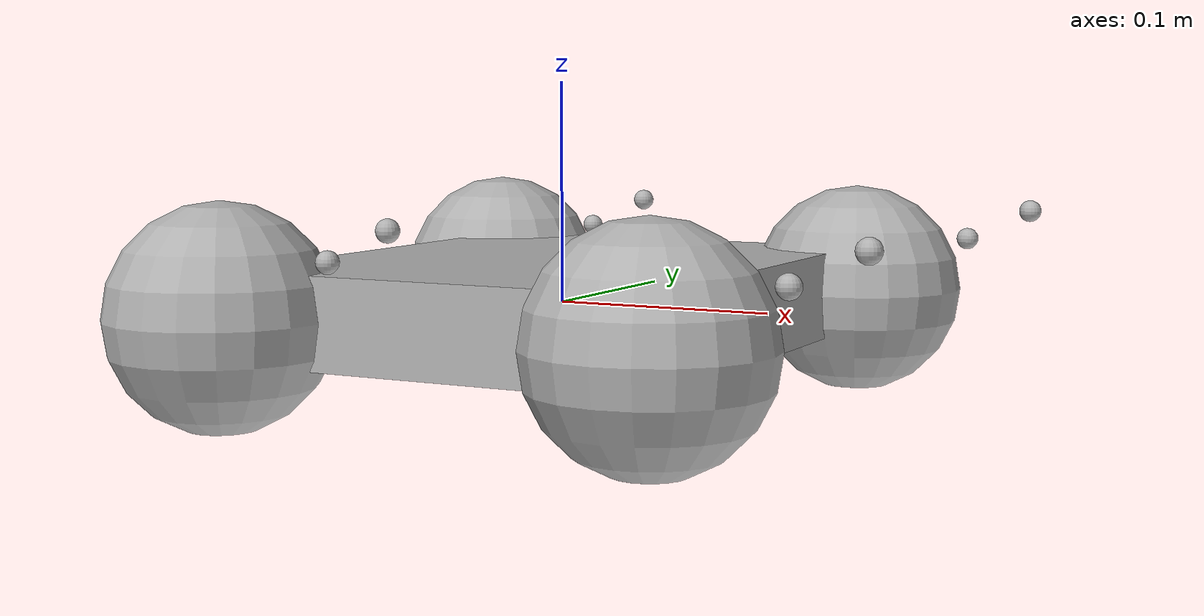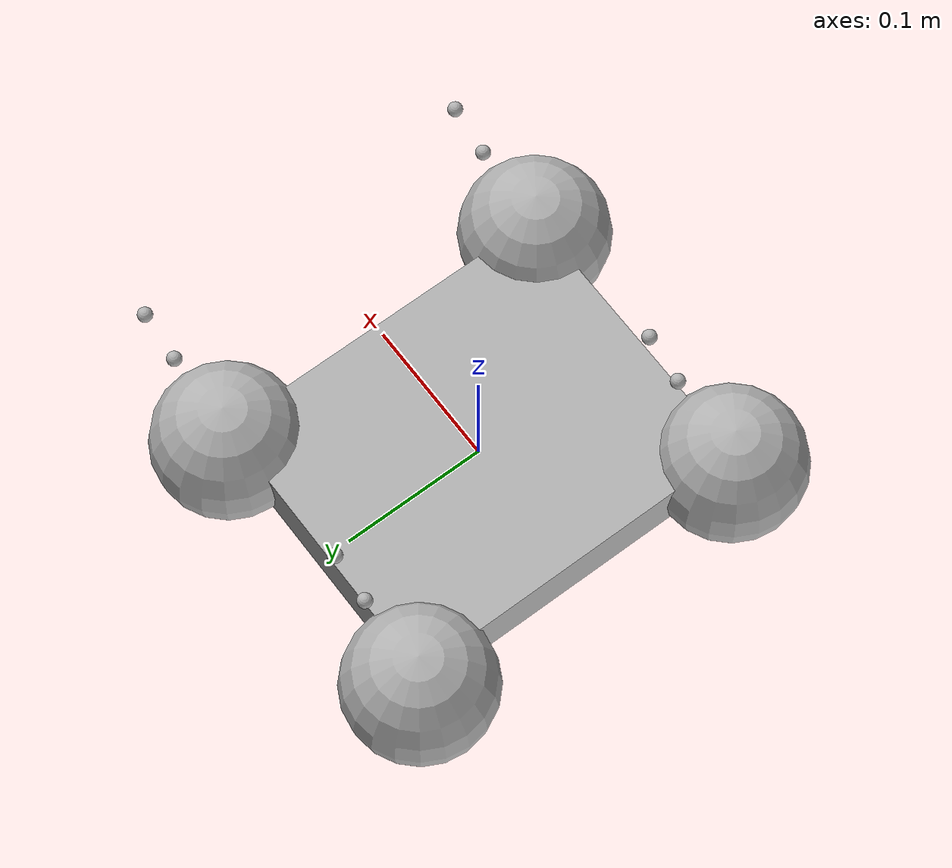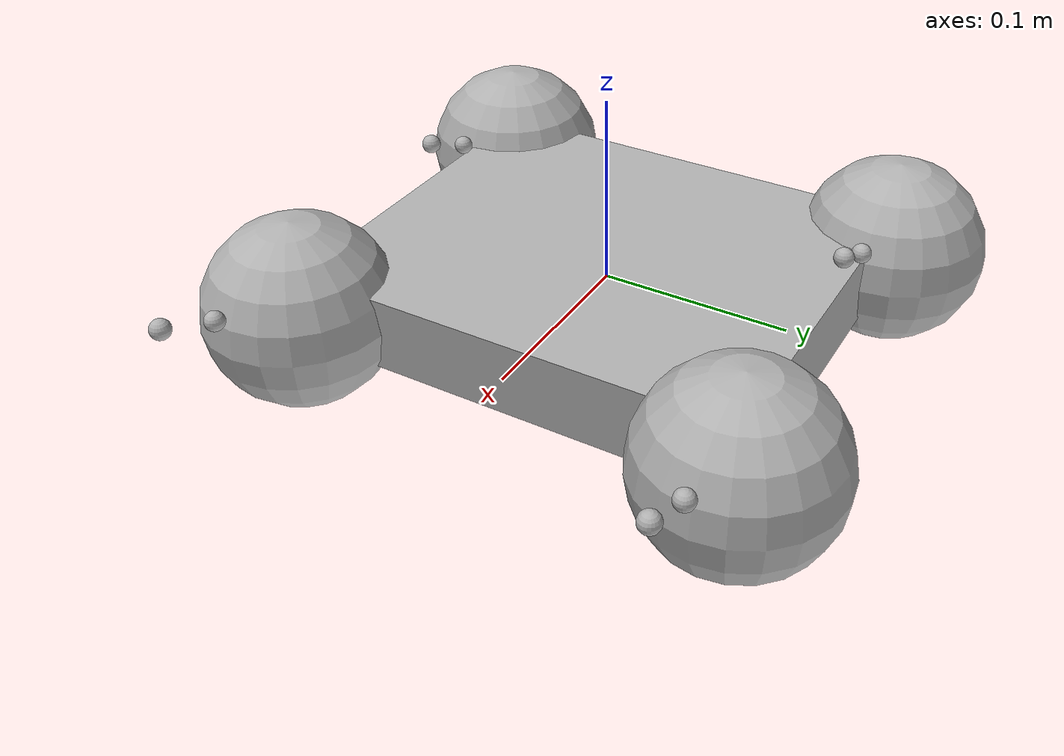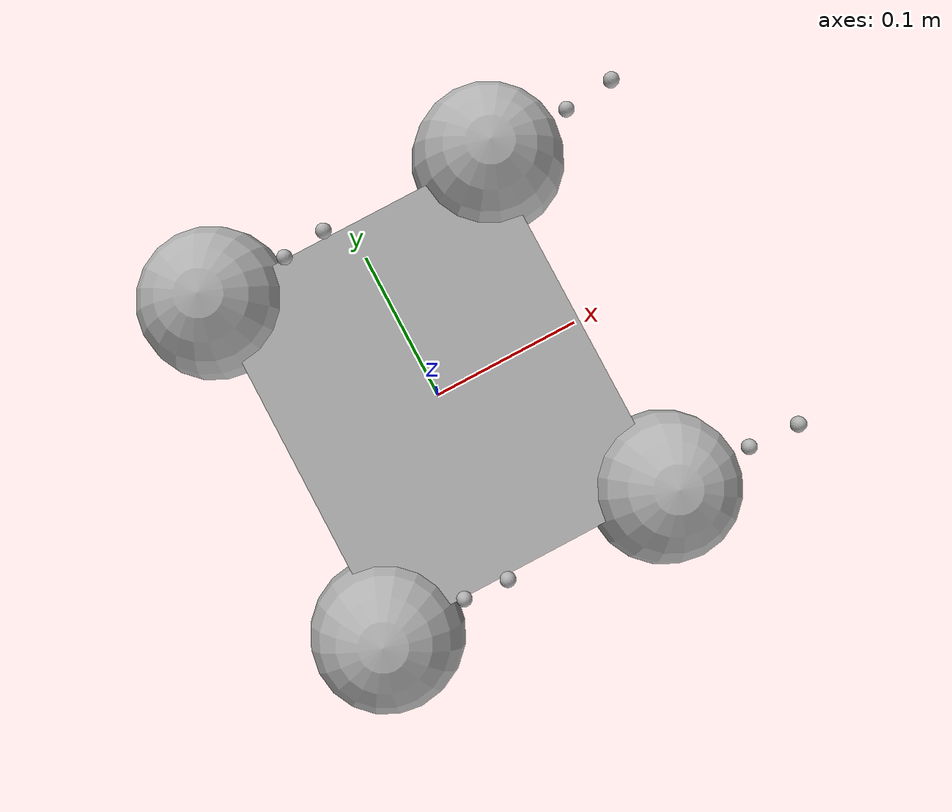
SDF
<?xml version='1.0'?>

<sdf version='1.6'>
  <model name='ugv-rb'>

    <link name='chassis'>

      <pose frame=''>0 0 0 0 -0 0</pose>

      <inertial>
        <mass>0.71616</mass>
        <inertia>
          <ixx>0.003533056</ixx>
          <ixy>0</ixy>
          <ixz>0</ixz>
          <iyy>0.0024826880000000003</iyy>
          <iyz>0</iyz>
          <izz>0.005824768000000001</izz>
        </inertia>
      </inertial>

      <visual name='visual'>
        <geometry>
          <box>
            <size>0.2 0.24 0.04</size>
          </box>
        </geometry>
        <material>
          <ambient>0.3 0.3 0.3 1</ambient>
          <diffuse>0.7 0.7 0.7 1</diffuse>
          <specular>0.01 0.01 0.01 1</specular>
          <emissive>0 0 0 1</emissive>
        </material>
        <transparency>0</transparency>
      </visual>

      <collision name='collision'>
        <geometry>
          <box>
            <size>0.2 0.24 0.04</size>
          </box>
        </geometry>
      </collision>

    </link>

    <link name='front-right-wheel'>

      <pose frame=''>0.1 -0.12 0 0 -0 0</pose>

      <inertial>
        <mass>0.1953023432981655</mass>
        <inertia>
          <ixx>0.00019530234329816556</ixx>
          <ixy>0</ixy>
          <ixz>0</ixz>
          <iyy>0.00019530234329816556</iyy>
          <iyz>0</iyz>
          <izz>0.00019530234329816556</izz>
        </inertia>
      </inertial>

      <visual name='visual'>
        <geometry>
          <sphere>
            <radius>0.05</radius>
          </sphere>
        </geometry>
        <material>
          <ambient>0.3 0.3 0.6 1</ambient>
          <diffuse>0.7 0.7 0.7 1</diffuse>
          <specular>0.01 0.01 0.01 1</specular>
          <emissive>0 0 0 1</emissive>
        </material>
        <transparency>0</transparency>
      </visual>

      <collision name='collision'>
        <geometry>
          <sphere>
            <radius>0.05</radius>
          </sphere>
        </geometry>
      </collision>

    </link>

    <link name='front-right-wheel-leg1'>

      <pose frame=''>0.18437546221665874 -0.12 0.03996732420789099 0 -0 0</pose>

      <inertial>
        <mass>0.00019530234329816546</mass>
        <inertia>
          <ixx>1.953023432981655e-09</ixx>
          <ixy>0</ixy>
          <ixz>0</ixz>
          <iyy>1.953023432981655e-09</iyy>
          <iyz>0</iyz>
          <izz>1.953023432981655e-09</izz>
        </inertia>
      </inertial>

      <visual name='visual'>
        <geometry>
          <sphere>
            <radius>0.005</radius>
          </sphere>
        </geometry>
        <material>
          <ambient>0.3 0.3 0.6 1</ambient>
          <diffuse>0.7 0.7 0.7 1</diffuse>
          <specular>0.01 0.01 0.01 1</specular>
          <emissive>0 0 0 1</emissive>
        </material>
        <transparency>0</transparency>
      </visual>

      <collision name='collision'>
        <geometry>
          <sphere>
            <radius>0.005</radius>
          </sphere>
        </geometry>
      </collision>

    </link>

    <link name='front-right-wheel-leg2'>

      <pose frame=''>0.15487828682683807 -0.12 0.025994977970607507 0 -0 0</pose>

      <inertial>
        <mass>0.00019530234329816546</mass>
        <inertia>
          <ixx>1.953023432981655e-09</ixx>
          <ixy>0</ixy>
          <ixz>0</ixz>
          <iyy>1.953023432981655e-09</iyy>
          <iyz>0</iyz>
          <izz>1.953023432981655e-09</izz>
        </inertia>
      </inertial>

      <visual name='visual'>
        <geometry>
          <sphere>
            <radius>0.005</radius>
          </sphere>
        </geometry>
        <material>
          <ambient>0.3 0.3 0.6 1</ambient>
          <diffuse>0.7 0.7 0.7 1</diffuse>
          <specular>0.01 0.01 0.01 1</specular>
          <emissive>0 0 0 1</emissive>
        </material>
        <transparency>0</transparency>
      </visual>

      <collision name='collision'>
        <geometry>
          <sphere>
            <radius>0.005</radius>
          </sphere>
        </geometry>
      </collision>

    </link>

    <link name='front-right-wheel-leg3'>

      <pose frame=''>0.11310623918697993 -0.12 0.006208218562253646 0 -0 0</pose>

      <inertial>
        <mass>0.00019530234329816546</mass>
        <inertia>
          <ixx>1.953023432981655e-09</ixx>
          <ixy>0</ixy>
          <ixz>0</ixz>
          <iyy>1.953023432981655e-09</iyy>
          <iyz>0</iyz>
          <izz>1.953023432981655e-09</izz>
        </inertia>
      </inertial>

      <visual name='visual'>
        <geometry>
          <sphere>
            <radius>0.005</radius>
          </sphere>
        </geometry>
        <material>
          <ambient>0.3 0.3 0.6 1</ambient>
          <diffuse>0.7 0.7 0.7 1</diffuse>
          <specular>0.01 0.01 0.01 1</specular>
          <emissive>0 0 0 1</emissive>
        </material>
        <transparency>0</transparency>
      </visual>

      <collision name='collision'>
        <geometry>
          <sphere>
            <radius>0.005</radius>
          </sphere>
        </geometry>
      </collision>

    </link>

    <link name='front-left-wheel'>

      <pose frame=''>0.1 0.12 0 0 -0 0</pose>

      <inertial>
        <mass>0.1953023432981655</mass>
        <inertia>
          <ixx>0.00019530234329816556</ixx>
          <ixy>0</ixy>
          <ixz>0</ixz>
          <iyy>0.00019530234329816556</iyy>
          <iyz>0</iyz>
          <izz>0.00019530234329816556</izz>
        </inertia>
      </inertial>

      <visual name='visual'>
        <geometry>
          <sphere>
            <radius>0.05</radius>
          </sphere>
        </geometry>
        <material>
          <ambient>0.3 0.3 0.6 1</ambient>
          <diffuse>0.7 0.7 0.7 1</diffuse>
          <specular>0.01 0.01 0.01 1</specular>
          <emissive>0 0 0 1</emissive>
        </material>
        <transparency>0</transparency>
      </visual>

      <collision name='collision'>
        <geometry>
          <sphere>
            <radius>0.05</radius>
          </sphere>
        </geometry>
      </collision>

    </link>

    <link name='front-left-wheel-leg1'>

      <pose frame=''>0.18437546221665874 0.12 0.03996732420789099 0 -0 0</pose>

      <inertial>
        <mass>0.00019530234329816546</mass>
        <inertia>
          <ixx>1.953023432981655e-09</ixx>
          <ixy>0</ixy>
          <ixz>0</ixz>
          <iyy>1.953023432981655e-09</iyy>
          <iyz>0</iyz>
          <izz>1.953023432981655e-09</izz>
        </inertia>
      </inertial>

      <visual name='visual'>
        <geometry>
          <sphere>
            <radius>0.005</radius>
          </sphere>
        </geometry>
        <material>
          <ambient>0.3 0.3 0.6 1</ambient>
          <diffuse>0.7 0.7 0.7 1</diffuse>
          <specular>0.01 0.01 0.01 1</specular>
          <emissive>0 0 0 1</emissive>
        </material>
        <transparency>0</transparency>
      </visual>

      <collision name='collision'>
        <geometry>
          <sphere>
            <radius>0.005</radius>
          </sphere>
        </geometry>
      </collision>

    </link>

    <link name='front-left-wheel-leg2'>

      <pose frame=''>0.15487828682683807 0.12 0.025994977970607507 0 -0 0</pose>

      <inertial>
        <mass>0.00019530234329816546</mass>
        <inertia>
          <ixx>1.953023432981655e-09</ixx>
          <ixy>0</ixy>
          <ixz>0</ixz>
          <iyy>1.953023432981655e-09</iyy>
          <iyz>0</iyz>
          <izz>1.953023432981655e-09</izz>
        </inertia>
      </inertial>

      <visual name='visual'>
        <geometry>
          <sphere>
            <radius>0.005</radius>
          </sphere>
        </geometry>
        <material>
          <ambient>0.3 0.3 0.6 1</ambient>
          <diffuse>0.7 0.7 0.7 1</diffuse>
          <specular>0.01 0.01 0.01 1</specular>
          <emissive>0 0 0 1</emissive>
        </material>
        <transparency>0</transparency>
      </visual>

      <collision name='collision'>
        <geometry>
          <sphere>
            <radius>0.005</radius>
          </sphere>
        </geometry>
      </collision>

    </link>

    <link name='front-left-wheel-leg3'>

      <pose frame=''>0.11310623918697993 0.12 0.006208218562253646 0 -0 0</pose>

      <inertial>
        <mass>0.00019530234329816546</mass>
        <inertia>
          <ixx>1.953023432981655e-09</ixx>
          <ixy>0</ixy>
          <ixz>0</ixz>
          <iyy>1.953023432981655e-09</iyy>
          <iyz>0</iyz>
          <izz>1.953023432981655e-09</izz>
        </inertia>
      </inertial>

      <visual name='visual'>
        <geometry>
          <sphere>
            <radius>0.005</radius>
          </sphere>
        </geometry>
        <material>
          <ambient>0.3 0.3 0.6 1</ambient>
          <diffuse>0.7 0.7 0.7 1</diffuse>
          <specular>0.01 0.01 0.01 1</specular>
          <emissive>0 0 0 1</emissive>
        </material>
        <transparency>0</transparency>
      </visual>

      <collision name='collision'>
        <geometry>
          <sphere>
            <radius>0.005</radius>
          </sphere>
        </geometry>
      </collision>

    </link>

    <link name='back-right-wheel'>

      <pose frame=''>-0.1 -0.12 0 0 -0 0</pose>

      <inertial>
        <mass>0.1953023432981655</mass>
        <inertia>
          <ixx>0.00019530234329816556</ixx>
          <ixy>0</ixy>
          <ixz>0</ixz>
          <iyy>0.00019530234329816556</iyy>
          <iyz>0</iyz>
          <izz>0.00019530234329816556</izz>
        </inertia>
      </inertial>

      <visual name='visual'>
        <geometry>
          <sphere>
            <radius>0.05</radius>
          </sphere>
        </geometry>
        <material>
          <ambient>0.3 0.3 0.6 1</ambient>
          <diffuse>0.7 0.7 0.7 1</diffuse>
          <specular>0.01 0.01 0.01 1</specular>
          <emissive>0 0 0 1</emissive>
        </material>
        <transparency>0</transparency>
      </visual>

      <collision name='collision'>
        <geometry>
          <sphere>
            <radius>0.05</radius>
          </sphere>
        </geometry>
      </collision>

    </link>

    <link name='back-right-wheel-leg1'>

      <pose frame=''>-0.01562453778334126 -0.12 0.03996732420789099 0 -0 0</pose>

      <inertial>
        <mass>0.00019530234329816546</mass>
        <inertia>
          <ixx>1.953023432981655e-09</ixx>
          <ixy>0</ixy>
          <ixz>0</ixz>
          <iyy>1.953023432981655e-09</iyy>
          <iyz>0</iyz>
          <izz>1.953023432981655e-09</izz>
        </inertia>
      </inertial>

      <visual name='visual'>
        <geometry>
          <sphere>
            <radius>0.005</radius>
          </sphere>
        </geometry>
        <material>
          <ambient>0.3 0.3 0.6 1</ambient>
          <diffuse>0.7 0.7 0.7 1</diffuse>
          <specular>0.01 0.01 0.01 1</specular>
          <emissive>0 0 0 1</emissive>
        </material>
        <transparency>0</transparency>
      </visual>

      <collision name='collision'>
        <geometry>
          <sphere>
            <radius>0.005</radius>
          </sphere>
        </geometry>
      </collision>

    </link>

    <link name='back-right-wheel-leg2'>

      <pose frame=''>-0.04512171317316194 -0.12 0.025994977970607507 0 -0 0</pose>

      <inertial>
        <mass>0.00019530234329816546</mass>
        <inertia>
          <ixx>1.953023432981655e-09</ixx>
          <ixy>0</ixy>
          <ixz>0</ixz>
          <iyy>1.953023432981655e-09</iyy>
          <iyz>0</iyz>
          <izz>1.953023432981655e-09</izz>
        </inertia>
      </inertial>

      <visual name='visual'>
        <geometry>
          <sphere>
            <radius>0.005</radius>
          </sphere>
        </geometry>
        <material>
          <ambient>0.3 0.3 0.6 1</ambient>
          <diffuse>0.7 0.7 0.7 1</diffuse>
          <specular>0.01 0.01 0.01 1</specular>
          <emissive>0 0 0 1</emissive>
        </material>
        <transparency>0</transparency>
      </visual>

      <collision name='collision'>
        <geometry>
          <sphere>
            <radius>0.005</radius>
          </sphere>
        </geometry>
      </collision>

    </link>

    <link name='back-right-wheel-leg3'>

      <pose frame=''>-0.08689376081302008 -0.12 0.006208218562253646 0 -0 0</pose>

      <inertial>
        <mass>0.00019530234329816546</mass>
        <inertia>
          <ixx>1.953023432981655e-09</ixx>
          <ixy>0</ixy>
          <ixz>0</ixz>
          <iyy>1.953023432981655e-09</iyy>
          <iyz>0</iyz>
          <izz>1.953023432981655e-09</izz>
        </inertia>
      </inertial>

      <visual name='visual'>
        <geometry>
          <sphere>
            <radius>0.005</radius>
          </sphere>
        </geometry>
        <material>
          <ambient>0.3 0.3 0.6 1</ambient>
          <diffuse>0.7 0.7 0.7 1</diffuse>
          <specular>0.01 0.01 0.01 1</specular>
          <emissive>0 0 0 1</emissive>
        </material>
        <transparency>0</transparency>
      </visual>

      <collision name='collision'>
        <geometry>
          <sphere>
            <radius>0.005</radius>
          </sphere>
        </geometry>
      </collision>

    </link>

    <link name='back-left-wheel'>

      <pose frame=''>-0.1 0.12 0 0 -0 0</pose>

      <inertial>
        <mass>0.1953023432981655</mass>
        <inertia>
          <ixx>0.00019530234329816556</ixx>
          <ixy>0</ixy>
          <ixz>0</ixz>
          <iyy>0.00019530234329816556</iyy>
          <iyz>0</iyz>
          <izz>0.00019530234329816556</izz>
        </inertia>
      </inertial>

      <visual name='visual'>
        <geometry>
          <sphere>
            <radius>0.05</radius>
          </sphere>
        </geometry>
        <material>
          <ambient>0.3 0.3 0.6 1</ambient>
          <diffuse>0.7 0.7 0.7 1</diffuse>
          <specular>0.01 0.01 0.01 1</specular>
          <emissive>0 0 0 1</emissive>
        </material>
        <transparency>0</transparency>
      </visual>

      <collision name='collision'>
        <geometry>
          <sphere>
            <radius>0.05</radius>
          </sphere>
        </geometry>
      </collision>

    </link>

    <link name='back-left-wheel-leg1'>

      <pose frame=''>-0.01562453778334126 0.12 0.03996732420789099 0 -0 0</pose>

      <inertial>
        <mass>0.00019530234329816546</mass>
        <inertia>
          <ixx>1.953023432981655e-09</ixx>
          <ixy>0</ixy>
          <ixz>0</ixz>
          <iyy>1.953023432981655e-09</iyy>
          <iyz>0</iyz>
          <izz>1.953023432981655e-09</izz>
        </inertia>
      </inertial>

      <visual name='visual'>
        <geometry>
          <sphere>
            <radius>0.005</radius>
          </sphere>
        </geometry>
        <material>
          <ambient>0.3 0.3 0.6 1</ambient>
          <diffuse>0.7 0.7 0.7 1</diffuse>
          <specular>0.01 0.01 0.01 1</specular>
          <emissive>0 0 0 1</emissive>
        </material>
        <transparency>0</transparency>
      </visual>

      <collision name='collision'>
        <geometry>
          <sphere>
            <radius>0.005</radius>
          </sphere>
        </geometry>
      </collision>

    </link>

    <link name='back-left-wheel-leg2'>

      <pose frame=''>-0.04512171317316194 0.12 0.025994977970607507 0 -0 0</pose>

      <inertial>
        <mass>0.00019530234329816546</mass>
        <inertia>
          <ixx>1.953023432981655e-09</ixx>
          <ixy>0</ixy>
          <ixz>0</ixz>
          <iyy>1.953023432981655e-09</iyy>
          <iyz>0</iyz>
          <izz>1.953023432981655e-09</izz>
        </inertia>
      </inertial>

      <visual name='visual'>
        <geometry>
          <sphere>
            <radius>0.005</radius>
          </sphere>
        </geometry>
        <material>
          <ambient>0.3 0.3 0.6 1</ambient>
          <diffuse>0.7 0.7 0.7 1</diffuse>
          <specular>0.01 0.01 0.01 1</specular>
          <emissive>0 0 0 1</emissive>
        </material>
        <transparency>0</transparency>
      </visual>

      <collision name='collision'>
        <geometry>
          <sphere>
            <radius>0.005</radius>
          </sphere>
        </geometry>
      </collision>

    </link>

    <link name='back-left-wheel-leg3'>

      <pose frame=''>-0.08689376081302008 0.12 0.006208218562253646 0 -0 0</pose>

      <inertial>
        <mass>0.00019530234329816546</mass>
        <inertia>
          <ixx>1.953023432981655e-09</ixx>
          <ixy>0</ixy>
          <ixz>0</ixz>
          <iyy>1.953023432981655e-09</iyy>
          <iyz>0</iyz>
          <izz>1.953023432981655e-09</izz>
        </inertia>
      </inertial>

      <visual name='visual'>
        <geometry>
          <sphere>
            <radius>0.005</radius>
          </sphere>
        </geometry>
        <material>
          <ambient>0.3 0.3 0.6 1</ambient>
          <diffuse>0.7 0.7 0.7 1</diffuse>
          <specular>0.01 0.01 0.01 1</specular>
          <emissive>0 0 0 1</emissive>
        </material>
        <transparency>0</transparency>
      </visual>

      <collision name='collision'>
        <geometry>
          <sphere>
            <radius>0.005</radius>
          </sphere>
        </geometry>
      </collision>

    </link>

    <joint name='front-right-wheel-joint' type='revolute'>
      <parent>chassis</parent>
      <child>front-right-wheel</child>
      <pose frame=''>0 0 0 0 -0 0</pose>
      <axis>
        <xyz>0 1 0</xyz>
      </axis>
    </joint>

    <joint name='front-left-wheel-joint' type='revolute'>
      <parent>chassis</parent>
      <child>front-left-wheel</child>
      <pose frame=''>0 0 0 0 -0 0</pose>
      <axis>
        <xyz>0 1 0</xyz>
      </axis>
    </joint>

    <joint name='back-right-wheel-joint' type='revolute'>
      <parent>chassis</parent>
      <child>back-right-wheel</child>
      <pose frame=''>0 0 0 0 -0 0</pose>
      <axis>
        <xyz>0 1 0</xyz>
      </axis>
    </joint>

    <joint name='back-left-wheel-joint' type='revolute'>
      <parent>chassis</parent>
      <child>back-left-wheel</child>
      <pose frame=''>0 0 0 0 -0 0</pose>
      <axis>
        <xyz>0 1 0</xyz>
      </axis>
    </joint>

  </model>
</sdf>
